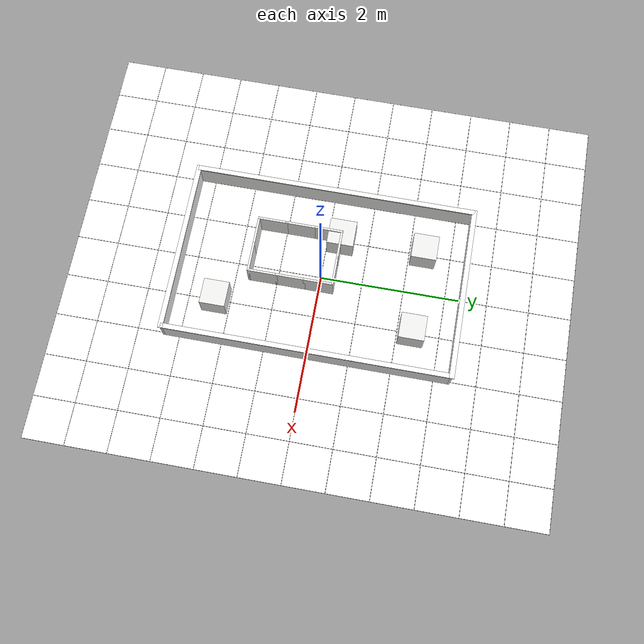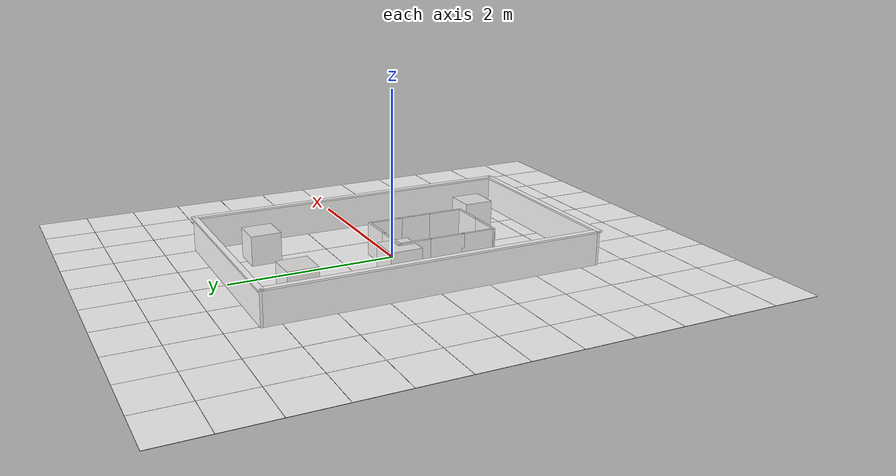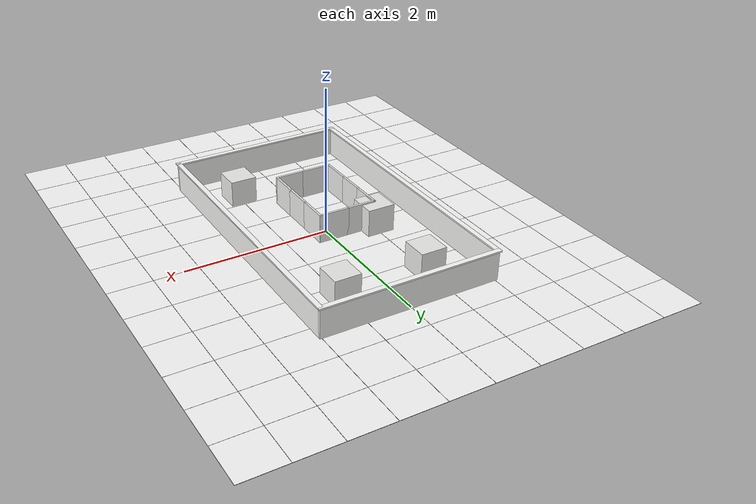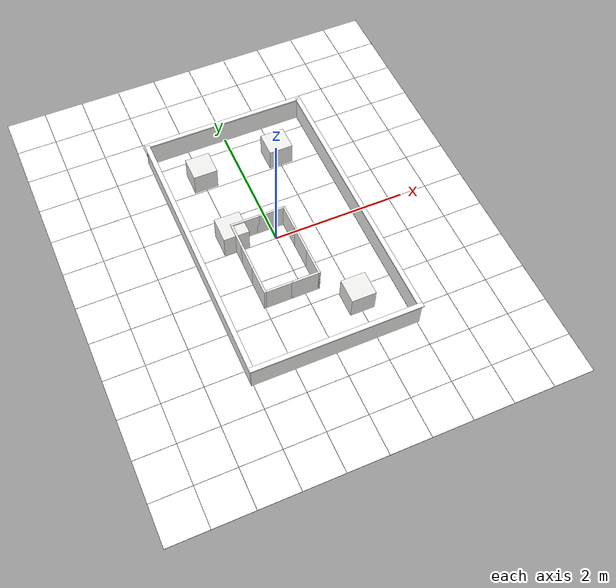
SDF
<?xml version="1.0" ?>
<!-- Generated by generate_grid_world.py from maps/udc_fig3.txt -->
<sdf version="1.9">
  <world name="default">
    <plugin filename="gz-sim-physics-system" name="gz::sim::systems::Physics"/>
    <plugin filename="gz-sim-user-commands-system" name="gz::sim::systems::UserCommands"/>
    <plugin filename="gz-sim-scene-broadcaster-system" name="gz::sim::systems::SceneBroadcaster"/>
    <plugin filename="gz-sim-sensors-system" name="gz::sim::systems::Sensors">
      <render_engine>ogre2</render_engine>
    </plugin>

    <scene>
      <ambient>0.6 0.6 0.6 1</ambient>
      <background>0.8 0.8 0.8 1</background>
      <grid>false</grid>
    </scene>

    <light type="directional" name="sun">
      <cast_shadows>false</cast_shadows>
      <pose>0 0 10 0 0 0</pose>
      <diffuse>0.9 0.9 0.9 1</diffuse>
      <specular>0.2 0.2 0.2 1</specular>
      <direction>-0.3 0.2 -1</direction>
    </light>

    <light type="directional" name="fill">
      <cast_shadows>false</cast_shadows>
      <pose>0 0 10 0 0 0</pose>
      <diffuse>0.45 0.45 0.45 1</diffuse>
      <specular>0 0 0 1</specular>
      <direction>0.6 -0.7 -0.5</direction>
    </light>

    <model name="grid_floor"><static>true</static><link name="link"><visual name="floor_0_0_visual"><pose>-2.7000 -3.3000 0.0010 0 0 0</pose><geometry><box><size>0.5970 0.5970 0.0020</size></box></geometry><material><ambient>1 1 1 1</ambient><diffuse>1 1 1 1</diffuse><pbr><metal><albedo_map>model://grid_world_assets/materials/textures/terrazzo.png</albedo_map><roughness>0.85</roughness><metalness>0</metalness></metal></pbr></material></visual><visual name="floor_0_1_visual"><pose>-2.7000 -2.7000 0.0010 0 0 0</pose><geometry><box><size>0.5970 0.5970 0.0020</size></box></geometry><material><ambient>1 1 1 1</ambient><diffuse>1 1 1 1</diffuse><pbr><metal><albedo_map>model://grid_world_assets/materials/textures/terrazzo.png</albedo_map><roughness>0.85</roughness><metalness>0</metalness></metal></pbr></material></visual><visual name="floor_0_2_visual"><pose>-2.7000 -2.1000 0.0010 0 0 0</pose><geometry><box><size>0.5970 0.5970 0.0020</size></box></geometry><material><ambient>1 1 1 1</ambient><diffuse>1 1 1 1</diffuse><pbr><metal><albedo_map>model://grid_world_assets/materials/textures/terrazzo.png</albedo_map><roughness>0.85</roughness><metalness>0</metalness></metal></pbr></material></visual><visual name="floor_0_3_visual"><pose>-2.7000 -1.5000 0.0010 0 0 0</pose><geometry><box><size>0.5970 0.5970 0.0020</size></box></geometry><material><ambient>1 1 1 1</ambient><diffuse>1 1 1 1</diffuse><pbr><metal><albedo_map>model://grid_world_assets/materials/textures/terrazzo.png</albedo_map><roughness>0.85</roughness><metalness>0</metalness></metal></pbr></material></visual><visual name="floor_0_4_visual"><pose>-2.7000 -0.9000 0.0010 0 0 0</pose><geometry><box><size>0.5970 0.5970 0.0020</size></box></geometry><material><ambient>1 1 1 1</ambient><diffuse>1 1 1 1</diffuse><pbr><metal><albedo_map>model://grid_world_assets/materials/textures/terrazzo.png</albedo_map><roughness>0.85</roughness><metalness>0</metalness></metal></pbr></material></visual><visual name="floor_0_5_visual"><pose>-2.7000 -0.3000 0.0010 0 0 0</pose><geometry><box><size>0.5970 0.5970 0.0020</size></box></geometry><material><ambient>1 1 1 1</ambient><diffuse>1 1 1 1</diffuse><pbr><metal><albedo_map>model://grid_world_assets/materials/textures/terrazzo.png</albedo_map><roughness>0.85</roughness><metalness>0</metalness></metal></pbr></material></visual><visual name="floor_0_6_visual"><pose>-2.7000 0.3000 0.0010 0 0 0</pose><geometry><box><size>0.5970 0.5970 0.0020</size></box></geometry><material><ambient>1 1 1 1</ambient><diffuse>1 1 1 1</diffuse><pbr><metal><albedo_map>model://grid_world_assets/materials/textures/terrazzo.png</albedo_map><roughness>0.85</roughness><metalness>0</metalness></metal></pbr></material></visual><visual name="floor_0_7_visual"><pose>-2.7000 0.9000 0.0010 0 0 0</pose><geometry><box><size>0.5970 0.5970 0.0020</size></box></geometry><material><ambient>1 1 1 1</ambient><diffuse>1 1 1 1</diffuse><pbr><metal><albedo_map>model://grid_world_assets/materials/textures/terrazzo.png</albedo_map><roughness>0.85</roughness><metalness>0</metalness></metal></pbr></material></visual><visual name="floor_0_8_visual"><pose>-2.7000 1.5000 0.0010 0 0 0</pose><geometry><box><size>0.5970 0.5970 0.0020</size></box></geometry><material><ambient>1 1 1 1</ambient><diffuse>1 1 1 1</diffuse><pbr><metal><albedo_map>model://grid_world_assets/materials/textures/terrazzo.png</albedo_map><roughness>0.85</roughness><metalness>0</metalness></metal></pbr></material></visual><visual name="floor_0_9_visual"><pose>-2.7000 2.1000 0.0010 0 0 0</pose><geometry><box><size>0.5970 0.5970 0.0020</size></box></geometry><material><ambient>1 1 1 1</ambient><diffuse>1 1 1 1</diffuse><pbr><metal><albedo_map>model://grid_world_assets/materials/textures/terrazzo.png</albedo_map><roughness>0.85</roughness><metalness>0</metalness></metal></pbr></material></visual><visual name="floor_0_10_visual"><pose>-2.7000 2.7000 0.0010 0 0 0</pose><geometry><box><size>0.5970 0.5970 0.0020</size></box></geometry><material><ambient>1 1 1 1</ambient><diffuse>1 1 1 1</diffuse><pbr><metal><albedo_map>model://grid_world_assets/materials/textures/terrazzo.png</albedo_map><roughness>0.85</roughness><metalness>0</metalness></metal></pbr></material></visual><visual name="floor_0_11_visual"><pose>-2.7000 3.3000 0.0010 0 0 0</pose><geometry><box><size>0.5970 0.5970 0.0020</size></box></geometry><material><ambient>1 1 1 1</ambient><diffuse>1 1 1 1</diffuse><pbr><metal><albedo_map>model://grid_world_assets/materials/textures/terrazzo.png</albedo_map><roughness>0.85</roughness><metalness>0</metalness></metal></pbr></material></visual><visual name="floor_1_0_visual"><pose>-2.1000 -3.3000 0.0010 0 0 0</pose><geometry><box><size>0.5970 0.5970 0.0020</size></box></geometry><material><ambient>1 1 1 1</ambient><diffuse>1 1 1 1</diffuse><pbr><metal><albedo_map>model://grid_world_assets/materials/textures/terrazzo.png</albedo_map><roughness>0.85</roughness><metalness>0</metalness></metal></pbr></material></visual><visual name="floor_1_1_visual"><pose>-2.1000 -2.7000 0.0010 0 0 0</pose><geometry><box><size>0.5970 0.5970 0.0020</size></box></geometry><material><ambient>1 1 1 1</ambient><diffuse>1 1 1 1</diffuse><pbr><metal><albedo_map>model://grid_world_assets/materials/textures/terrazzo.png</albedo_map><roughness>0.85</roughness><metalness>0</metalness></metal></pbr></material></visual><visual name="floor_1_2_visual"><pose>-2.1000 -2.1000 0.0010 0 0 0</pose><geometry><box><size>0.5970 0.5970 0.0020</size></box></geometry><material><ambient>1 1 1 1</ambient><diffuse>1 1 1 1</diffuse><pbr><metal><albedo_map>model://grid_world_assets/materials/textures/terrazzo.png</albedo_map><roughness>0.85</roughness><metalness>0</metalness></metal></pbr></material></visual><visual name="floor_1_3_visual"><pose>-2.1000 -1.5000 0.0010 0 0 0</pose><geometry><box><size>0.5970 0.5970 0.0020</size></box></geometry><material><ambient>1 1 1 1</ambient><diffuse>1 1 1 1</diffuse><pbr><metal><albedo_map>model://grid_world_assets/materials/textures/terrazzo.png</albedo_map><roughness>0.85</roughness><metalness>0</metalness></metal></pbr></material></visual><visual name="floor_1_4_visual"><pose>-2.1000 -0.9000 0.0010 0 0 0</pose><geometry><box><size>0.5970 0.5970 0.0020</size></box></geometry><material><ambient>1 1 1 1</ambient><diffuse>1 1 1 1</diffuse><pbr><metal><albedo_map>model://grid_world_assets/materials/textures/terrazzo.png</albedo_map><roughness>0.85</roughness><metalness>0</metalness></metal></pbr></material></visual><visual name="floor_1_5_visual"><pose>-2.1000 -0.3000 0.0010 0 0 0</pose><geometry><box><size>0.5970 0.5970 0.0020</size></box></geometry><material><ambient>1 1 1 1</ambient><diffuse>1 1 1 1</diffuse><pbr><metal><albedo_map>model://grid_world_assets/materials/textures/terrazzo.png</albedo_map><roughness>0.85</roughness><metalness>0</metalness></metal></pbr></material></visual><visual name="floor_1_6_visual"><pose>-2.1000 0.3000 0.0010 0 0 0</pose><geometry><box><size>0.5970 0.5970 0.0020</size></box></geometry><material><ambient>1 1 1 1</ambient><diffuse>1 1 1 1</diffuse><pbr><metal><albedo_map>model://grid_world_assets/materials/textures/terrazzo.png</albedo_map><roughness>0.85</roughness><metalness>0</metalness></metal></pbr></material></visual><visual name="floor_1_7_visual"><pose>-2.1000 0.9000 0.0010 0 0 0</pose><geometry><box><size>0.5970 0.5970 0.0020</size></box></geometry><material><ambient>1 1 1 1</ambient><diffuse>1 1 1 1</diffuse><pbr><metal><albedo_map>model://grid_world_assets/materials/textures/terrazzo.png</albedo_map><roughness>0.85</roughness><metalness>0</metalness></metal></pbr></material></visual><visual name="floor_1_8_visual"><pose>-2.1000 1.5000 0.0010 0 0 0</pose><geometry><box><size>0.5970 0.5970 0.0020</size></box></geometry><material><ambient>1 1 1 1</ambient><diffuse>1 1 1 1</diffuse><pbr><metal><albedo_map>model://grid_world_assets/materials/textures/terrazzo.png</albedo_map><roughness>0.85</roughness><metalness>0</metalness></metal></pbr></material></visual><visual name="floor_1_9_visual"><pose>-2.1000 2.1000 0.0010 0 0 0</pose><geometry><box><size>0.5970 0.5970 0.0020</size></box></geometry><material><ambient>1 1 1 1</ambient><diffuse>1 1 1 1</diffuse><pbr><metal><albedo_map>model://grid_world_assets/materials/textures/terrazzo.png</albedo_map><roughness>0.85</roughness><metalness>0</metalness></metal></pbr></material></visual><visual name="floor_1_10_visual"><pose>-2.1000 2.7000 0.0010 0 0 0</pose><geometry><box><size>0.5970 0.5970 0.0020</size></box></geometry><material><ambient>1 1 1 1</ambient><diffuse>1 1 1 1</diffuse><pbr><metal><albedo_map>model://grid_world_assets/materials/textures/terrazzo.png</albedo_map><roughness>0.85</roughness><metalness>0</metalness></metal></pbr></material></visual><visual name="floor_1_11_visual"><pose>-2.1000 3.3000 0.0010 0 0 0</pose><geometry><box><size>0.5970 0.5970 0.0020</size></box></geometry><material><ambient>1 1 1 1</ambient><diffuse>1 1 1 1</diffuse><pbr><metal><albedo_map>model://grid_world_assets/materials/textures/terrazzo.png</albedo_map><roughness>0.85</roughness><metalness>0</metalness></metal></pbr></material></visual><visual name="floor_2_0_visual"><pose>-1.5000 -3.3000 0.0010 0 0 0</pose><geometry><box><size>0.5970 0.5970 0.0020</size></box></geometry><material><ambient>1 1 1 1</ambient><diffuse>1 1 1 1</diffuse><pbr><metal><albedo_map>model://grid_world_assets/materials/textures/terrazzo.png</albedo_map><roughness>0.85</roughness><metalness>0</metalness></metal></pbr></material></visual><visual name="floor_2_1_visual"><pose>-1.5000 -2.7000 0.0010 0 0 0</pose><geometry><box><size>0.5970 0.5970 0.0020</size></box></geometry><material><ambient>1 1 1 1</ambient><diffuse>1 1 1 1</diffuse><pbr><metal><albedo_map>model://grid_world_assets/materials/textures/terrazzo.png</albedo_map><roughness>0.85</roughness><metalness>0</metalness></metal></pbr></material></visual><visual name="floor_2_2_visual"><pose>-1.5000 -2.1000 0.0010 0 0 0</pose><geometry><box><size>0.5970 0.5970 0.0020</size></box></geometry><material><ambient>1 1 1 1</ambient><diffuse>1 1 1 1</diffuse><pbr><metal><albedo_map>model://grid_world_assets/materials/textures/terrazzo.png</albedo_map><roughness>0.85</roughness><metalness>0</metalness></metal></pbr></material></visual><visual name="floor_2_3_visual"><pose>-1.5000 -1.5000 0.0010 0 0 0</pose><geometry><box><size>0.5970 0.5970 0.0020</size></box></geometry><material><ambient>1 1 1 1</ambient><diffuse>1 1 1 1</diffuse><pbr><metal><albedo_map>model://grid_world_assets/materials/textures/terrazzo.png</albedo_map><roughness>0.85</roughness><metalness>0</metalness></metal></pbr></material></visual><visual name="floor_2_4_visual"><pose>-1.5000 -0.9000 0.0010 0 0 0</pose><geometry><box><size>0.5970 0.5970 0.0020</size></box></geometry><material><ambient>1 1 1 1</ambient><diffuse>1 1 1 1</diffuse><pbr><metal><albedo_map>model://grid_world_assets/materials/textures/terrazzo.png</albedo_map><roughness>0.85</roughness><metalness>0</metalness></metal></pbr></material></visual><visual name="floor_2_5_visual"><pose>-1.5000 -0.3000 0.0010 0 0 0</pose><geometry><box><size>0.5970 0.5970 0.0020</size></box></geometry><material><ambient>1 1 1 1</ambient><diffuse>1 1 1 1</diffuse><pbr><metal><albedo_map>model://grid_world_assets/materials/textures/terrazzo.png</albedo_map><roughness>0.85</roughness><metalness>0</metalness></metal></pbr></material></visual><visual name="floor_2_6_visual"><pose>-1.5000 0.3000 0.0010 0 0 0</pose><geometry><box><size>0.5970 0.5970 0.0020</size></box></geometry><material><ambient>1 1 1 1</ambient><diffuse>1 1 1 1</diffuse><pbr><metal><albedo_map>model://grid_world_assets/materials/textures/terrazzo.png</albedo_map><roughness>0.85</roughness><metalness>0</metalness></metal></pbr></material></visual><visual name="floor_2_7_visual"><pose>-1.5000 0.9000 0.0010 0 0 0</pose><geometry><box><size>0.5970 0.5970 0.0020</size></box></geometry><material><ambient>1 1 1 1</ambient><diffuse>1 1 1 1</diffuse><pbr><metal><albedo_map>model://grid_world_assets/materials/textures/terrazzo.png</albedo_map><roughness>0.85</roughness><metalness>0</metalness></metal></pbr></material></visual><visual name="floor_2_8_visual"><pose>-1.5000 1.5000 0.0010 0 0 0</pose><geometry><box><size>0.5970 0.5970 0.0020</size></box></geometry><material><ambient>1 1 1 1</ambient><diffuse>1 1 1 1</diffuse><pbr><metal><albedo_map>model://grid_world_assets/materials/textures/terrazzo.png</albedo_map><roughness>0.85</roughness><metalness>0</metalness></metal></pbr></material></visual><visual name="floor_2_9_visual"><pose>-1.5000 2.1000 0.0010 0 0 0</pose><geometry><box><size>0.5970 0.5970 0.0020</size></box></geometry><material><ambient>1 1 1 1</ambient><diffuse>1 1 1 1</diffuse><pbr><metal><albedo_map>model://grid_world_assets/materials/textures/terrazzo.png</albedo_map><roughness>0.85</roughness><metalness>0</metalness></metal></pbr></material></visual><visual name="floor_2_10_visual"><pose>-1.5000 2.7000 0.0010 0 0 0</pose><geometry><box><size>0.5970 0.5970 0.0020</size></box></geometry><material><ambient>1 1 1 1</ambient><diffuse>1 1 1 1</diffuse><pbr><metal><albedo_map>model://grid_world_assets/materials/textures/terrazzo.png</albedo_map><roughness>0.85</roughness><metalness>0</metalness></metal></pbr></material></visual><visual name="floor_2_11_visual"><pose>-1.5000 3.3000 0.0010 0 0 0</pose><geometry><box><size>0.5970 0.5970 0.0020</size></box></geometry><material><ambient>1 1 1 1</ambient><diffuse>1 1 1 1</diffuse><pbr><metal><albedo_map>model://grid_world_assets/materials/textures/terrazzo.png</albedo_map><roughness>0.85</roughness><metalness>0</metalness></metal></pbr></material></visual><visual name="floor_3_0_visual"><pose>-0.9000 -3.3000 0.0010 0 0 0</pose><geometry><box><size>0.5970 0.5970 0.0020</size></box></geometry><material><ambient>1 1 1 1</ambient><diffuse>1 1 1 1</diffuse><pbr><metal><albedo_map>model://grid_world_assets/materials/textures/terrazzo.png</albedo_map><roughness>0.85</roughness><metalness>0</metalness></metal></pbr></material></visual><visual name="floor_3_1_visual"><pose>-0.9000 -2.7000 0.0010 0 0 0</pose><geometry><box><size>0.5970 0.5970 0.0020</size></box></geometry><material><ambient>1 1 1 1</ambient><diffuse>1 1 1 1</diffuse><pbr><metal><albedo_map>model://grid_world_assets/materials/textures/terrazzo.png</albedo_map><roughness>0.85</roughness><metalness>0</metalness></metal></pbr></material></visual><visual name="floor_3_2_visual"><pose>-0.9000 -2.1000 0.0010 0 0 0</pose><geometry><box><size>0.5970 0.5970 0.0020</size></box></geometry><material><ambient>1 1 1 1</ambient><diffuse>1 1 1 1</diffuse><pbr><metal><albedo_map>model://grid_world_assets/materials/textures/terrazzo.png</albedo_map><roughness>0.85</roughness><metalness>0</metalness></metal></pbr></material></visual><visual name="floor_3_3_visual"><pose>-0.9000 -1.5000 0.0010 0 0 0</pose><geometry><box><size>0.5970 0.5970 0.0020</size></box></geometry><material><ambient>1 1 1 1</ambient><diffuse>1 1 1 1</diffuse><pbr><metal><albedo_map>model://grid_world_assets/materials/textures/terrazzo.png</albedo_map><roughness>0.85</roughness><metalness>0</metalness></metal></pbr></material></visual><visual name="floor_3_4_visual"><pose>-0.9000 -0.9000 0.0010 0 0 0</pose><geometry><box><size>0.5970 0.5970 0.0020</size></box></geometry><material><ambient>1 1 1 1</ambient><diffuse>1 1 1 1</diffuse><pbr><metal><albedo_map>model://grid_world_assets/materials/textures/terrazzo.png</albedo_map><roughness>0.85</roughness><metalness>0</metalness></metal></pbr></material></visual><visual name="floor_3_5_visual"><pose>-0.9000 -0.3000 0.0010 0 0 0</pose><geometry><box><size>0.5970 0.5970 0.0020</size></box></geometry><material><ambient>1 1 1 1</ambient><diffuse>1 1 1 1</diffuse><pbr><metal><albedo_map>model://grid_world_assets/materials/textures/terrazzo.png</albedo_map><roughness>0.85</roughness><metalness>0</metalness></metal></pbr></material></visual><visual name="floor_3_6_visual"><pose>-0.9000 0.3000 0.0010 0 0 0</pose><geometry><box><size>0.5970 0.5970 0.0020</size></box></geometry><material><ambient>1 1 1 1</ambient><diffuse>1 1 1 1</diffuse><pbr><metal><albedo_map>model://grid_world_assets/materials/textures/terrazzo.png</albedo_map><roughness>0.85</roughness><metalness>0</metalness></metal></pbr></material></visual><visual name="floor_3_7_visual"><pose>-0.9000 0.9000 0.0010 0 0 0</pose><geometry><box><size>0.5970 0.5970 0.0020</size></box></geometry><material><ambient>1 1 1 1</ambient><diffuse>1 1 1 1</diffuse><pbr><metal><albedo_map>model://grid_world_assets/materials/textures/terrazzo.png</albedo_map><roughness>0.85</roughness><metalness>0</metalness></metal></pbr></material></visual><visual name="floor_3_8_visual"><pose>-0.9000 1.5000 0.0010 0 0 0</pose><geometry><box><size>0.5970 0.5970 0.0020</size></box></geometry><material><ambient>1 1 1 1</ambient><diffuse>1 1 1 1</diffuse><pbr><metal><albedo_map>model://grid_world_assets/materials/textures/terrazzo.png</albedo_map><roughness>0.85</roughness><metalness>0</metalness></metal></pbr></material></visual><visual name="floor_3_9_visual"><pose>-0.9000 2.1000 0.0010 0 0 0</pose><geometry><box><size>0.5970 0.5970 0.0020</size></box></geometry><material><ambient>1 1 1 1</ambient><diffuse>1 1 1 1</diffuse><pbr><metal><albedo_map>model://grid_world_assets/materials/textures/terrazzo.png</albedo_map><roughness>0.85</roughness><metalness>0</metalness></metal></pbr></material></visual><visual name="floor_3_10_visual"><pose>-0.9000 2.7000 0.0010 0 0 0</pose><geometry><box><size>0.5970 0.5970 0.0020</size></box></geometry><material><ambient>1 1 1 1</ambient><diffuse>1 1 1 1</diffuse><pbr><metal><albedo_map>model://grid_world_assets/materials/textures/terrazzo.png</albedo_map><roughness>0.85</roughness><metalness>0</metalness></metal></pbr></material></visual><visual name="floor_3_11_visual"><pose>-0.9000 3.3000 0.0010 0 0 0</pose><geometry><box><size>0.5970 0.5970 0.0020</size></box></geometry><material><ambient>1 1 1 1</ambient><diffuse>1 1 1 1</diffuse><pbr><metal><albedo_map>model://grid_world_assets/materials/textures/terrazzo.png</albedo_map><roughness>0.85</roughness><metalness>0</metalness></metal></pbr></material></visual><visual name="floor_4_0_visual"><pose>-0.3000 -3.3000 0.0010 0 0 0</pose><geometry><box><size>0.5970 0.5970 0.0020</size></box></geometry><material><ambient>1 1 1 1</ambient><diffuse>1 1 1 1</diffuse><pbr><metal><albedo_map>model://grid_world_assets/materials/textures/terrazzo.png</albedo_map><roughness>0.85</roughness><metalness>0</metalness></metal></pbr></material></visual><visual name="floor_4_1_visual"><pose>-0.3000 -2.7000 0.0010 0 0 0</pose><geometry><box><size>0.5970 0.5970 0.0020</size></box></geometry><material><ambient>1 1 1 1</ambient><diffuse>1 1 1 1</diffuse><pbr><metal><albedo_map>model://grid_world_assets/materials/textures/terrazzo.png</albedo_map><roughness>0.85</roughness><metalness>0</metalness></metal></pbr></material></visual><visual name="floor_4_2_visual"><pose>-0.3000 -2.1000 0.0010 0 0 0</pose><geometry><box><size>0.5970 0.5970 0.0020</size></box></geometry><material><ambient>1 1 1 1</ambient><diffuse>1 1 1 1</diffuse><pbr><metal><albedo_map>model://grid_world_assets/materials/textures/terrazzo.png</albedo_map><roughness>0.85</roughness><metalness>0</metalness></metal></pbr></material></visual><visual name="floor_4_3_visual"><pose>-0.3000 -1.5000 0.0010 0 0 0</pose><geometry><box><size>0.5970 0.5970 0.0020</size></box></geometry><material><ambient>1 1 1 1</ambient><diffuse>1 1 1 1</diffuse><pbr><metal><albedo_map>model://grid_world_assets/materials/textures/terrazzo.png</albedo_map><roughness>0.85</roughness><metalness>0</metalness></metal></pbr></material></visual><visual name="floor_4_4_visual"><pose>-0.3000 -0.9000 0.0010 0 0 0</pose><geometry><box><size>0.5970 0.5970 0.0020</size></box></geometry><material><ambient>1 1 1 1</ambient><diffuse>1 1 1 1</diffuse><pbr><metal><albedo_map>model://grid_world_assets/materials/textures/terrazzo.png</albedo_map><roughness>0.85</roughness><metalness>0</metalness></metal></pbr></material></visual><visual name="floor_4_5_visual"><pose>-0.3000 -0.3000 0.0010 0 0 0</pose><geometry><box><size>0.5970 0.5970 0.0020</size></box></geometry><material><ambient>1 1 1 1</ambient><diffuse>1 1 1 1</diffuse><pbr><metal><albedo_map>model://grid_world_assets/materials/textures/terrazzo.png</albedo_map><roughness>0.85</roughness><metalness>0</metalness></metal></pbr></material></visual><visual name="floor_4_6_visual"><pose>-0.3000 0.3000 0.0010 0 0 0</pose><geometry><box><size>0.5970 0.5970 0.0020</size></box></geometry><material><ambient>1 1 1 1</ambient><diffuse>1 1 1 1</diffuse><pbr><metal><albedo_map>model://grid_world_assets/materials/textures/terrazzo.png</albedo_map><roughness>0.85</roughness><metalness>0</metalness></metal></pbr></material></visual><visual name="floor_4_7_visual"><pose>-0.3000 0.9000 0.0010 0 0 0</pose><geometry><box><size>0.5970 0.5970 0.0020</size></box></geometry><material><ambient>1 1 1 1</ambient><diffuse>1 1 1 1</diffuse><pbr><metal><albedo_map>model://grid_world_assets/materials/textures/terrazzo.png</albedo_map><roughness>0.85</roughness><metalness>0</metalness></metal></pbr></material></visual><visual name="floor_4_8_visual"><pose>-0.3000 1.5000 0.0010 0 0 0</pose><geometry><box><size>0.5970 0.5970 0.0020</size></box></geometry><material><ambient>1 1 1 1</ambient><diffuse>1 1 1 1</diffuse><pbr><metal><albedo_map>model://grid_world_assets/materials/textures/terrazzo.png</albedo_map><roughness>0.85</roughness><metalness>0</metalness></metal></pbr></material></visual><visual name="floor_4_9_visual"><pose>-0.3000 2.1000 0.0010 0 0 0</pose><geometry><box><size>0.5970 0.5970 0.0020</size></box></geometry><material><ambient>1 1 1 1</ambient><diffuse>1 1 1 1</diffuse><pbr><metal><albedo_map>model://grid_world_assets/materials/textures/terrazzo.png</albedo_map><roughness>0.85</roughness><metalness>0</metalness></metal></pbr></material></visual><visual name="floor_4_10_visual"><pose>-0.3000 2.7000 0.0010 0 0 0</pose><geometry><box><size>0.5970 0.5970 0.0020</size></box></geometry><material><ambient>1 1 1 1</ambient><diffuse>1 1 1 1</diffuse><pbr><metal><albedo_map>model://grid_world_assets/materials/textures/terrazzo.png</albedo_map><roughness>0.85</roughness><metalness>0</metalness></metal></pbr></material></visual><visual name="floor_4_11_visual"><pose>-0.3000 3.3000 0.0010 0 0 0</pose><geometry><box><size>0.5970 0.5970 0.0020</size></box></geometry><material><ambient>1 1 1 1</ambient><diffuse>1 1 1 1</diffuse><pbr><metal><albedo_map>model://grid_world_assets/materials/textures/terrazzo.png</albedo_map><roughness>0.85</roughness><metalness>0</metalness></metal></pbr></material></visual><visual name="floor_5_0_visual"><pose>0.3000 -3.3000 0.0010 0 0 0</pose><geometry><box><size>0.5970 0.5970 0.0020</size></box></geometry><material><ambient>1 1 1 1</ambient><diffuse>1 1 1 1</diffuse><pbr><metal><albedo_map>model://grid_world_assets/materials/textures/terrazzo.png</albedo_map><roughness>0.85</roughness><metalness>0</metalness></metal></pbr></material></visual><visual name="floor_5_1_visual"><pose>0.3000 -2.7000 0.0010 0 0 0</pose><geometry><box><size>0.5970 0.5970 0.0020</size></box></geometry><material><ambient>1 1 1 1</ambient><diffuse>1 1 1 1</diffuse><pbr><metal><albedo_map>model://grid_world_assets/materials/textures/terrazzo.png</albedo_map><roughness>0.85</roughness><metalness>0</metalness></metal></pbr></material></visual><visual name="floor_5_2_visual"><pose>0.3000 -2.1000 0.0010 0 0 0</pose><geometry><box><size>0.5970 0.5970 0.0020</size></box></geometry><material><ambient>1 1 1 1</ambient><diffuse>1 1 1 1</diffuse><pbr><metal><albedo_map>model://grid_world_assets/materials/textures/terrazzo.png</albedo_map><roughness>0.85</roughness><metalness>0</metalness></metal></pbr></material></visual><visual name="floor_5_3_visual"><pose>0.3000 -1.5000 0.0010 0 0 0</pose><geometry><box><size>0.5970 0.5970 0.0020</size></box></geometry><material><ambient>1 1 1 1</ambient><diffuse>1 1 1 1</diffuse><pbr><metal><albedo_map>model://grid_world_assets/materials/textures/terrazzo.png</albedo_map><roughness>0.85</roughness><metalness>0</metalness></metal></pbr></material></visual><visual name="floor_5_4_visual"><pose>0.3000 -0.9000 0.0010 0 0 0</pose><geometry><box><size>0.5970 0.5970 0.0020</size></box></geometry><material><ambient>1 1 1 1</ambient><diffuse>1 1 1 1</diffuse><pbr><metal><albedo_map>model://grid_world_assets/materials/textures/terrazzo.png</albedo_map><roughness>0.85</roughness><metalness>0</metalness></metal></pbr></material></visual><visual name="floor_5_5_visual"><pose>0.3000 -0.3000 0.0010 0 0 0</pose><geometry><box><size>0.5970 0.5970 0.0020</size></box></geometry><material><ambient>1 1 1 1</ambient><diffuse>1 1 1 1</diffuse><pbr><metal><albedo_map>model://grid_world_assets/materials/textures/terrazzo.png</albedo_map><roughness>0.85</roughness><metalness>0</metalness></metal></pbr></material></visual><visual name="floor_5_6_visual"><pose>0.3000 0.3000 0.0010 0 0 0</pose><geometry><box><size>0.5970 0.5970 0.0020</size></box></geometry><material><ambient>1 1 1 1</ambient><diffuse>1 1 1 1</diffuse><pbr><metal><albedo_map>model://grid_world_assets/materials/textures/terrazzo.png</albedo_map><roughness>0.85</roughness><metalness>0</metalness></metal></pbr></material></visual><visual name="floor_5_7_visual"><pose>0.3000 0.9000 0.0010 0 0 0</pose><geometry><box><size>0.5970 0.5970 0.0020</size></box></geometry><material><ambient>1 1 1 1</ambient><diffuse>1 1 1 1</diffuse><pbr><metal><albedo_map>model://grid_world_assets/materials/textures/terrazzo.png</albedo_map><roughness>0.85</roughness><metalness>0</metalness></metal></pbr></material></visual><visual name="floor_5_8_visual"><pose>0.3000 1.5000 0.0010 0 0 0</pose><geometry><box><size>0.5970 0.5970 0.0020</size></box></geometry><material><ambient>1 1 1 1</ambient><diffuse>1 1 1 1</diffuse><pbr><metal><albedo_map>model://grid_world_assets/materials/textures/terrazzo.png</albedo_map><roughness>0.85</roughness><metalness>0</metalness></metal></pbr></material></visual><visual name="floor_5_9_visual"><pose>0.3000 2.1000 0.0010 0 0 0</pose><geometry><box><size>0.5970 0.5970 0.0020</size></box></geometry><material><ambient>1 1 1 1</ambient><diffuse>1 1 1 1</diffuse><pbr><metal><albedo_map>model://grid_world_assets/materials/textures/terrazzo.png</albedo_map><roughness>0.85</roughness><metalness>0</metalness></metal></pbr></material></visual><visual name="floor_5_10_visual"><pose>0.3000 2.7000 0.0010 0 0 0</pose><geometry><box><size>0.5970 0.5970 0.0020</size></box></geometry><material><ambient>1 1 1 1</ambient><diffuse>1 1 1 1</diffuse><pbr><metal><albedo_map>model://grid_world_assets/materials/textures/terrazzo.png</albedo_map><roughness>0.85</roughness><metalness>0</metalness></metal></pbr></material></visual><visual name="floor_5_11_visual"><pose>0.3000 3.3000 0.0010 0 0 0</pose><geometry><box><size>0.5970 0.5970 0.0020</size></box></geometry><material><ambient>1 1 1 1</ambient><diffuse>1 1 1 1</diffuse><pbr><metal><albedo_map>model://grid_world_assets/materials/textures/terrazzo.png</albedo_map><roughness>0.85</roughness><metalness>0</metalness></metal></pbr></material></visual><visual name="floor_6_0_visual"><pose>0.9000 -3.3000 0.0010 0 0 0</pose><geometry><box><size>0.5970 0.5970 0.0020</size></box></geometry><material><ambient>1 1 1 1</ambient><diffuse>1 1 1 1</diffuse><pbr><metal><albedo_map>model://grid_world_assets/materials/textures/terrazzo.png</albedo_map><roughness>0.85</roughness><metalness>0</metalness></metal></pbr></material></visual><visual name="floor_6_1_visual"><pose>0.9000 -2.7000 0.0010 0 0 0</pose><geometry><box><size>0.5970 0.5970 0.0020</size></box></geometry><material><ambient>1 1 1 1</ambient><diffuse>1 1 1 1</diffuse><pbr><metal><albedo_map>model://grid_world_assets/materials/textures/terrazzo.png</albedo_map><roughness>0.85</roughness><metalness>0</metalness></metal></pbr></material></visual><visual name="floor_6_2_visual"><pose>0.9000 -2.1000 0.0010 0 0 0</pose><geometry><box><size>0.5970 0.5970 0.0020</size></box></geometry><material><ambient>1 1 1 1</ambient><diffuse>1 1 1 1</diffuse><pbr><metal><albedo_map>model://grid_world_assets/materials/textures/terrazzo.png</albedo_map><roughness>0.85</roughness><metalness>0</metalness></metal></pbr></material></visual><visual name="floor_6_3_visual"><pose>0.9000 -1.5000 0.0010 0 0 0</pose><geometry><box><size>0.5970 0.5970 0.0020</size></box></geometry><material><ambient>1 1 1 1</ambient><diffuse>1 1 1 1</diffuse><pbr><metal><albedo_map>model://grid_world_assets/materials/textures/terrazzo.png</albedo_map><roughness>0.85</roughness><metalness>0</metalness></metal></pbr></material></visual><visual name="floor_6_4_visual"><pose>0.9000 -0.9000 0.0010 0 0 0</pose><geometry><box><size>0.5970 0.5970 0.0020</size></box></geometry><material><ambient>1 1 1 1</ambient><diffuse>1 1 1 1</diffuse><pbr><metal><albedo_map>model://grid_world_assets/materials/textures/terrazzo.png</albedo_map><roughness>0.85</roughness><metalness>0</metalness></metal></pbr></material></visual><visual name="floor_6_5_visual"><pose>0.9000 -0.3000 0.0010 0 0 0</pose><geometry><box><size>0.5970 0.5970 0.0020</size></box></geometry><material><ambient>1 1 1 1</ambient><diffuse>1 1 1 1</diffuse><pbr><metal><albedo_map>model://grid_world_assets/materials/textures/terrazzo.png</albedo_map><roughness>0.85</roughness><metalness>0</metalness></metal></pbr></material></visual><visual name="floor_6_6_visual"><pose>0.9000 0.3000 0.0010 0 0 0</pose><geometry><box><size>0.5970 0.5970 0.0020</size></box></geometry><material><ambient>1 1 1 1</ambient><diffuse>1 1 1 1</diffuse><pbr><metal><albedo_map>model://grid_world_assets/materials/textures/terrazzo.png</albedo_map><roughness>0.85</roughness><metalness>0</metalness></metal></pbr></material></visual><visual name="floor_6_7_visual"><pose>0.9000 0.9000 0.0010 0 0 0</pose><geometry><box><size>0.5970 0.5970 0.0020</size></box></geometry><material><ambient>1 1 1 1</ambient><diffuse>1 1 1 1</diffuse><pbr><metal><albedo_map>model://grid_world_assets/materials/textures/terrazzo.png</albedo_map><roughness>0.85</roughness><metalness>0</metalness></metal></pbr></material></visual><visual name="floor_6_8_visual"><pose>0.9000 1.5000 0.0010 0 0 0</pose><geometry><box><size>0.5970 0.5970 0.0020</size></box></geometry><material><ambient>1 1 1 1</ambient><diffuse>1 1 1 1</diffuse><pbr><metal><albedo_map>model://grid_world_assets/materials/textures/terrazzo.png</albedo_map><roughness>0.85</roughness><metalness>0</metalness></metal></pbr></material></visual><visual name="floor_6_9_visual"><pose>0.9000 2.1000 0.0010 0 0 0</pose><geometry><box><size>0.5970 0.5970 0.0020</size></box></geometry><material><ambient>1 1 1 1</ambient><diffuse>1 1 1 1</diffuse><pbr><metal><albedo_map>model://grid_world_assets/materials/textures/terrazzo.png</albedo_map><roughness>0.85</roughness><metalness>0</metalness></metal></pbr></material></visual><visual name="floor_6_10_visual"><pose>0.9000 2.7000 0.0010 0 0 0</pose><geometry><box><size>0.5970 0.5970 0.0020</size></box></geometry><material><ambient>1 1 1 1</ambient><diffuse>1 1 1 1</diffuse><pbr><metal><albedo_map>model://grid_world_assets/materials/textures/terrazzo.png</albedo_map><roughness>0.85</roughness><metalness>0</metalness></metal></pbr></material></visual><visual name="floor_6_11_visual"><pose>0.9000 3.3000 0.0010 0 0 0</pose><geometry><box><size>0.5970 0.5970 0.0020</size></box></geometry><material><ambient>1 1 1 1</ambient><diffuse>1 1 1 1</diffuse><pbr><metal><albedo_map>model://grid_world_assets/materials/textures/terrazzo.png</albedo_map><roughness>0.85</roughness><metalness>0</metalness></metal></pbr></material></visual><visual name="floor_7_0_visual"><pose>1.5000 -3.3000 0.0010 0 0 0</pose><geometry><box><size>0.5970 0.5970 0.0020</size></box></geometry><material><ambient>1 1 1 1</ambient><diffuse>1 1 1 1</diffuse><pbr><metal><albedo_map>model://grid_world_assets/materials/textures/terrazzo.png</albedo_map><roughness>0.85</roughness><metalness>0</metalness></metal></pbr></material></visual><visual name="floor_7_1_visual"><pose>1.5000 -2.7000 0.0010 0 0 0</pose><geometry><box><size>0.5970 0.5970 0.0020</size></box></geometry><material><ambient>1 1 1 1</ambient><diffuse>1 1 1 1</diffuse><pbr><metal><albedo_map>model://grid_world_assets/materials/textures/terrazzo.png</albedo_map><roughness>0.85</roughness><metalness>0</metalness></metal></pbr></material></visual><visual name="floor_7_2_visual"><pose>1.5000 -2.1000 0.0010 0 0 0</pose><geometry><box><size>0.5970 0.5970 0.0020</size></box></geometry><material><ambient>1 1 1 1</ambient><diffuse>1 1 1 1</diffuse><pbr><metal><albedo_map>model://grid_world_assets/materials/textures/terrazzo.png</albedo_map><roughness>0.85</roughness><metalness>0</metalness></metal></pbr></material></visual><visual name="floor_7_3_visual"><pose>1.5000 -1.5000 0.0010 0 0 0</pose><geometry><box><size>0.5970 0.5970 0.0020</size></box></geometry><material><ambient>1 1 1 1</ambient><diffuse>1 1 1 1</diffuse><pbr><metal><albedo_map>model://grid_world_assets/materials/textures/terrazzo.png</albedo_map><roughness>0.85</roughness><metalness>0</metalness></metal></pbr></material></visual><visual name="floor_7_4_visual"><pose>1.5000 -0.9000 0.0010 0 0 0</pose><geometry><box><size>0.5970 0.5970 0.0020</size></box></geometry><material><ambient>1 1 1 1</ambient><diffuse>1 1 1 1</diffuse><pbr><metal><albedo_map>model://grid_world_assets/materials/textures/terrazzo.png</albedo_map><roughness>0.85</roughness><metalness>0</metalness></metal></pbr></material></visual><visual name="floor_7_5_visual"><pose>1.5000 -0.3000 0.0010 0 0 0</pose><geometry><box><size>0.5970 0.5970 0.0020</size></box></geometry><material><ambient>1 1 1 1</ambient><diffuse>1 1 1 1</diffuse><pbr><metal><albedo_map>model://grid_world_assets/materials/textures/terrazzo.png</albedo_map><roughness>0.85</roughness><metalness>0</metalness></metal></pbr></material></visual><visual name="floor_7_6_visual"><pose>1.5000 0.3000 0.0010 0 0 0</pose><geometry><box><size>0.5970 0.5970 0.0020</size></box></geometry><material><ambient>1 1 1 1</ambient><diffuse>1 1 1 1</diffuse><pbr><metal><albedo_map>model://grid_world_assets/materials/textures/terrazzo.png</albedo_map><roughness>0.85</roughness><metalness>0</metalness></metal></pbr></material></visual><visual name="floor_7_7_visual"><pose>1.5000 0.9000 0.0010 0 0 0</pose><geometry><box><size>0.5970 0.5970 0.0020</size></box></geometry><material><ambient>1 1 1 1</ambient><diffuse>1 1 1 1</diffuse><pbr><metal><albedo_map>model://grid_world_assets/materials/textures/terrazzo.png</albedo_map><roughness>0.85</roughness><metalness>0</metalness></metal></pbr></material></visual><visual name="floor_7_8_visual"><pose>1.5000 1.5000 0.0010 0 0 0</pose><geometry><box><size>0.5970 0.5970 0.0020</size></box></geometry><material><ambient>1 1 1 1</ambient><diffuse>1 1 1 1</diffuse><pbr><metal><albedo_map>model://grid_world_assets/materials/textures/terrazzo.png</albedo_map><roughness>0.85</roughness><metalness>0</metalness></metal></pbr></material></visual><visual name="floor_7_9_visual"><pose>1.5000 2.1000 0.0010 0 0 0</pose><geometry><box><size>0.5970 0.5970 0.0020</size></box></geometry><material><ambient>1 1 1 1</ambient><diffuse>1 1 1 1</diffuse><pbr><metal><albedo_map>model://grid_world_assets/materials/textures/terrazzo.png</albedo_map><roughness>0.85</roughness><metalness>0</metalness></metal></pbr></material></visual><visual name="floor_7_10_visual"><pose>1.5000 2.7000 0.0010 0 0 0</pose><geometry><box><size>0.5970 0.5970 0.0020</size></box></geometry><material><ambient>1 1 1 1</ambient><diffuse>1 1 1 1</diffuse><pbr><metal><albedo_map>model://grid_world_assets/materials/textures/terrazzo.png</albedo_map><roughness>0.85</roughness><metalness>0</metalness></metal></pbr></material></visual><visual name="floor_7_11_visual"><pose>1.5000 3.3000 0.0010 0 0 0</pose><geometry><box><size>0.5970 0.5970 0.0020</size></box></geometry><material><ambient>1 1 1 1</ambient><diffuse>1 1 1 1</diffuse><pbr><metal><albedo_map>model://grid_world_assets/materials/textures/terrazzo.png</albedo_map><roughness>0.85</roughness><metalness>0</metalness></metal></pbr></material></visual><visual name="floor_8_0_visual"><pose>2.1000 -3.3000 0.0010 0 0 0</pose><geometry><box><size>0.5970 0.5970 0.0020</size></box></geometry><material><ambient>1 1 1 1</ambient><diffuse>1 1 1 1</diffuse><pbr><metal><albedo_map>model://grid_world_assets/materials/textures/terrazzo.png</albedo_map><roughness>0.85</roughness><metalness>0</metalness></metal></pbr></material></visual><visual name="floor_8_1_visual"><pose>2.1000 -2.7000 0.0010 0 0 0</pose><geometry><box><size>0.5970 0.5970 0.0020</size></box></geometry><material><ambient>1 1 1 1</ambient><diffuse>1 1 1 1</diffuse><pbr><metal><albedo_map>model://grid_world_assets/materials/textures/terrazzo.png</albedo_map><roughness>0.85</roughness><metalness>0</metalness></metal></pbr></material></visual><visual name="floor_8_2_visual"><pose>2.1000 -2.1000 0.0010 0 0 0</pose><geometry><box><size>0.5970 0.5970 0.0020</size></box></geometry><material><ambient>1 1 1 1</ambient><diffuse>1 1 1 1</diffuse><pbr><metal><albedo_map>model://grid_world_assets/materials/textures/terrazzo.png</albedo_map><roughness>0.85</roughness><metalness>0</metalness></metal></pbr></material></visual><visual name="floor_8_3_visual"><pose>2.1000 -1.5000 0.0010 0 0 0</pose><geometry><box><size>0.5970 0.5970 0.0020</size></box></geometry><material><ambient>1 1 1 1</ambient><diffuse>1 1 1 1</diffuse><pbr><metal><albedo_map>model://grid_world_assets/materials/textures/terrazzo.png</albedo_map><roughness>0.85</roughness><metalness>0</metalness></metal></pbr></material></visual><visual name="floor_8_4_visual"><pose>2.1000 -0.9000 0.0010 0 0 0</pose><geometry><box><size>0.5970 0.5970 0.0020</size></box></geometry><material><ambient>1 1 1 1</ambient><diffuse>1 1 1 1</diffuse><pbr><metal><albedo_map>model://grid_world_assets/materials/textures/terrazzo.png</albedo_map><roughness>0.85</roughness><metalness>0</metalness></metal></pbr></material></visual><visual name="floor_8_5_visual"><pose>2.1000 -0.3000 0.0010 0 0 0</pose><geometry><box><size>0.5970 0.5970 0.0020</size></box></geometry><material><ambient>1 1 1 1</ambient><diffuse>1 1 1 1</diffuse><pbr><metal><albedo_map>model://grid_world_assets/materials/textures/terrazzo.png</albedo_map><roughness>0.85</roughness><metalness>0</metalness></metal></pbr></material></visual><visual name="floor_8_6_visual"><pose>2.1000 0.3000 0.0010 0 0 0</pose><geometry><box><size>0.5970 0.5970 0.0020</size></box></geometry><material><ambient>1 1 1 1</ambient><diffuse>1 1 1 1</diffuse><pbr><metal><albedo_map>model://grid_world_assets/materials/textures/terrazzo.png</albedo_map><roughness>0.85</roughness><metalness>0</metalness></metal></pbr></material></visual><visual name="floor_8_7_visual"><pose>2.1000 0.9000 0.0010 0 0 0</pose><geometry><box><size>0.5970 0.5970 0.0020</size></box></geometry><material><ambient>1 1 1 1</ambient><diffuse>1 1 1 1</diffuse><pbr><metal><albedo_map>model://grid_world_assets/materials/textures/terrazzo.png</albedo_map><roughness>0.85</roughness><metalness>0</metalness></metal></pbr></material></visual><visual name="floor_8_8_visual"><pose>2.1000 1.5000 0.0010 0 0 0</pose><geometry><box><size>0.5970 0.5970 0.0020</size></box></geometry><material><ambient>1 1 1 1</ambient><diffuse>1 1 1 1</diffuse><pbr><metal><albedo_map>model://grid_world_assets/materials/textures/terrazzo.png</albedo_map><roughness>0.85</roughness><metalness>0</metalness></metal></pbr></material></visual><visual name="floor_8_9_visual"><pose>2.1000 2.1000 0.0010 0 0 0</pose><geometry><box><size>0.5970 0.5970 0.0020</size></box></geometry><material><ambient>1 1 1 1</ambient><diffuse>1 1 1 1</diffuse><pbr><metal><albedo_map>model://grid_world_assets/materials/textures/terrazzo.png</albedo_map><roughness>0.85</roughness><metalness>0</metalness></metal></pbr></material></visual><visual name="floor_8_10_visual"><pose>2.1000 2.7000 0.0010 0 0 0</pose><geometry><box><size>0.5970 0.5970 0.0020</size></box></geometry><material><ambient>1 1 1 1</ambient><diffuse>1 1 1 1</diffuse><pbr><metal><albedo_map>model://grid_world_assets/materials/textures/terrazzo.png</albedo_map><roughness>0.85</roughness><metalness>0</metalness></metal></pbr></material></visual><visual name="floor_8_11_visual"><pose>2.1000 3.3000 0.0010 0 0 0</pose><geometry><box><size>0.5970 0.5970 0.0020</size></box></geometry><material><ambient>1 1 1 1</ambient><diffuse>1 1 1 1</diffuse><pbr><metal><albedo_map>model://grid_world_assets/materials/textures/terrazzo.png</albedo_map><roughness>0.85</roughness><metalness>0</metalness></metal></pbr></material></visual><visual name="floor_9_0_visual"><pose>2.7000 -3.3000 0.0010 0 0 0</pose><geometry><box><size>0.5970 0.5970 0.0020</size></box></geometry><material><ambient>1 1 1 1</ambient><diffuse>1 1 1 1</diffuse><pbr><metal><albedo_map>model://grid_world_assets/materials/textures/terrazzo.png</albedo_map><roughness>0.85</roughness><metalness>0</metalness></metal></pbr></material></visual><visual name="floor_9_1_visual"><pose>2.7000 -2.7000 0.0010 0 0 0</pose><geometry><box><size>0.5970 0.5970 0.0020</size></box></geometry><material><ambient>1 1 1 1</ambient><diffuse>1 1 1 1</diffuse><pbr><metal><albedo_map>model://grid_world_assets/materials/textures/terrazzo.png</albedo_map><roughness>0.85</roughness><metalness>0</metalness></metal></pbr></material></visual><visual name="floor_9_2_visual"><pose>2.7000 -2.1000 0.0010 0 0 0</pose><geometry><box><size>0.5970 0.5970 0.0020</size></box></geometry><material><ambient>1 1 1 1</ambient><diffuse>1 1 1 1</diffuse><pbr><metal><albedo_map>model://grid_world_assets/materials/textures/terrazzo.png</albedo_map><roughness>0.85</roughness><metalness>0</metalness></metal></pbr></material></visual><visual name="floor_9_3_visual"><pose>2.7000 -1.5000 0.0010 0 0 0</pose><geometry><box><size>0.5970 0.5970 0.0020</size></box></geometry><material><ambient>1 1 1 1</ambient><diffuse>1 1 1 1</diffuse><pbr><metal><albedo_map>model://grid_world_assets/materials/textures/terrazzo.png</albedo_map><roughness>0.85</roughness><metalness>0</metalness></metal></pbr></material></visual><visual name="floor_9_4_visual"><pose>2.7000 -0.9000 0.0010 0 0 0</pose><geometry><box><size>0.5970 0.5970 0.0020</size></box></geometry><material><ambient>1 1 1 1</ambient><diffuse>1 1 1 1</diffuse><pbr><metal><albedo_map>model://grid_world_assets/materials/textures/terrazzo.png</albedo_map><roughness>0.85</roughness><metalness>0</metalness></metal></pbr></material></visual><visual name="floor_9_5_visual"><pose>2.7000 -0.3000 0.0010 0 0 0</pose><geometry><box><size>0.5970 0.5970 0.0020</size></box></geometry><material><ambient>1 1 1 1</ambient><diffuse>1 1 1 1</diffuse><pbr><metal><albedo_map>model://grid_world_assets/materials/textures/terrazzo.png</albedo_map><roughness>0.85</roughness><metalness>0</metalness></metal></pbr></material></visual><visual name="floor_9_6_visual"><pose>2.7000 0.3000 0.0010 0 0 0</pose><geometry><box><size>0.5970 0.5970 0.0020</size></box></geometry><material><ambient>1 1 1 1</ambient><diffuse>1 1 1 1</diffuse><pbr><metal><albedo_map>model://grid_world_assets/materials/textures/terrazzo.png</albedo_map><roughness>0.85</roughness><metalness>0</metalness></metal></pbr></material></visual><visual name="floor_9_7_visual"><pose>2.7000 0.9000 0.0010 0 0 0</pose><geometry><box><size>0.5970 0.5970 0.0020</size></box></geometry><material><ambient>1 1 1 1</ambient><diffuse>1 1 1 1</diffuse><pbr><metal><albedo_map>model://grid_world_assets/materials/textures/terrazzo.png</albedo_map><roughness>0.85</roughness><metalness>0</metalness></metal></pbr></material></visual><visual name="floor_9_8_visual"><pose>2.7000 1.5000 0.0010 0 0 0</pose><geometry><box><size>0.5970 0.5970 0.0020</size></box></geometry><material><ambient>1 1 1 1</ambient><diffuse>1 1 1 1</diffuse><pbr><metal><albedo_map>model://grid_world_assets/materials/textures/terrazzo.png</albedo_map><roughness>0.85</roughness><metalness>0</metalness></metal></pbr></material></visual><visual name="floor_9_9_visual"><pose>2.7000 2.1000 0.0010 0 0 0</pose><geometry><box><size>0.5970 0.5970 0.0020</size></box></geometry><material><ambient>1 1 1 1</ambient><diffuse>1 1 1 1</diffuse><pbr><metal><albedo_map>model://grid_world_assets/materials/textures/terrazzo.png</albedo_map><roughness>0.85</roughness><metalness>0</metalness></metal></pbr></material></visual><visual name="floor_9_10_visual"><pose>2.7000 2.7000 0.0010 0 0 0</pose><geometry><box><size>0.5970 0.5970 0.0020</size></box></geometry><material><ambient>1 1 1 1</ambient><diffuse>1 1 1 1</diffuse><pbr><metal><albedo_map>model://grid_world_assets/materials/textures/terrazzo.png</albedo_map><roughness>0.85</roughness><metalness>0</metalness></metal></pbr></material></visual><visual name="floor_9_11_visual"><pose>2.7000 3.3000 0.0010 0 0 0</pose><geometry><box><size>0.5970 0.5970 0.0020</size></box></geometry><material><ambient>1 1 1 1</ambient><diffuse>1 1 1 1</diffuse><pbr><metal><albedo_map>model://grid_world_assets/materials/textures/terrazzo.png</albedo_map><roughness>0.85</roughness><metalness>0</metalness></metal></pbr></material></visual><visual name="floor_joints_visual"><pose>0.0000 0.0000 -0.0010 0 0 0</pose><geometry><box><size>6.0000 7.2000 0.0020</size></box></geometry><material><ambient>0.18 0.19 0.19 1</ambient><diffuse>0.18 0.19 0.19 1</diffuse><specular>0.1 0.1 0.1 1</specular></material></visual><collision name="ground"><geometry><plane><normal>0 0 1</normal><size>50 50</size></plane></geometry></collision></link></model>
    <model name="grid_border"><static>true</static><link name="link"><visual name="north_visual"><pose>0.0000 2.0150 0.2000 0 0 0</pose><geometry><box><size>2.4600 0.0300 0.4000</size></box></geometry><material><ambient>0.95 0.95 0.94 1</ambient><diffuse>0.95 0.95 0.94 1</diffuse><specular>0.1 0.1 0.1 1</specular></material></visual><collision name="north_collision"><pose>0.0000 2.0150 0.2000 0 0 0</pose><geometry><box><size>2.4600 0.0300 0.4000</size></box></geometry></collision><visual name="north_cap_visual"><pose>0.0000 2.0150 0.4100 0 0 0</pose><geometry><box><size>2.5000 0.0700 0.0200</size></box></geometry><material><ambient>1 1 1 1</ambient><diffuse>1 1 1 1</diffuse><pbr><metal><albedo_map>model://grid_world_assets/materials/textures/wood_plank.png</albedo_map><roughness>0.85</roughness><metalness>0</metalness></metal></pbr></material></visual><collision name="north_cap_collision"><pose>0.0000 2.0150 0.4100 0 0 0</pose><geometry><box><size>2.5000 0.0700 0.0200</size></box></geometry></collision><visual name="south_visual"><pose>0.0000 -2.0150 0.2000 0 0 0</pose><geometry><box><size>2.4600 0.0300 0.4000</size></box></geometry><material><ambient>0.95 0.95 0.94 1</ambient><diffuse>0.95 0.95 0.94 1</diffuse><specular>0.1 0.1 0.1 1</specular></material></visual><collision name="south_collision"><pose>0.0000 -2.0150 0.2000 0 0 0</pose><geometry><box><size>2.4600 0.0300 0.4000</size></box></geometry></collision><visual name="south_cap_visual"><pose>0.0000 -2.0150 0.4100 0 0 0</pose><geometry><box><size>2.5000 0.0700 0.0200</size></box></geometry><material><ambient>1 1 1 1</ambient><diffuse>1 1 1 1</diffuse><pbr><metal><albedo_map>model://grid_world_assets/materials/textures/wood_plank.png</albedo_map><roughness>0.85</roughness><metalness>0</metalness></metal></pbr></material></visual><collision name="south_cap_collision"><pose>0.0000 -2.0150 0.4100 0 0 0</pose><geometry><box><size>2.5000 0.0700 0.0200</size></box></geometry></collision><visual name="east_visual"><pose>1.2150 0.0000 0.2000 0 0 0</pose><geometry><box><size>0.0300 4.0000 0.4000</size></box></geometry><material><ambient>0.95 0.95 0.94 1</ambient><diffuse>0.95 0.95 0.94 1</diffuse><specular>0.1 0.1 0.1 1</specular></material></visual><collision name="east_collision"><pose>1.2150 0.0000 0.2000 0 0 0</pose><geometry><box><size>0.0300 4.0000 0.4000</size></box></geometry></collision><visual name="east_cap_visual"><pose>1.2150 0.0000 0.4100 0 0 0</pose><geometry><box><size>0.0700 4.0400 0.0200</size></box></geometry><material><ambient>1 1 1 1</ambient><diffuse>1 1 1 1</diffuse><pbr><metal><albedo_map>model://grid_world_assets/materials/textures/wood_plank.png</albedo_map><roughness>0.85</roughness><metalness>0</metalness></metal></pbr></material></visual><collision name="east_cap_collision"><pose>1.2150 0.0000 0.4100 0 0 0</pose><geometry><box><size>0.0700 4.0400 0.0200</size></box></geometry></collision><visual name="west_visual"><pose>-1.2150 0.0000 0.2000 0 0 0</pose><geometry><box><size>0.0300 4.0000 0.4000</size></box></geometry><material><ambient>0.95 0.95 0.94 1</ambient><diffuse>0.95 0.95 0.94 1</diffuse><specular>0.1 0.1 0.1 1</specular></material></visual><collision name="west_collision"><pose>-1.2150 0.0000 0.2000 0 0 0</pose><geometry><box><size>0.0300 4.0000 0.4000</size></box></geometry></collision><visual name="west_cap_visual"><pose>-1.2150 0.0000 0.4100 0 0 0</pose><geometry><box><size>0.0700 4.0400 0.0200</size></box></geometry><material><ambient>1 1 1 1</ambient><diffuse>1 1 1 1</diffuse><pbr><metal><albedo_map>model://grid_world_assets/materials/textures/wood_plank.png</albedo_map><roughness>0.85</roughness><metalness>0</metalness></metal></pbr></material></visual><collision name="west_cap_collision"><pose>-1.2150 0.0000 0.4100 0 0 0</pose><geometry><box><size>0.0700 4.0400 0.0200</size></box></geometry></collision></link></model>
    <model name="box_1_1"><static>true</static><pose>-0.6000 1.4000 0 0 0 0</pose><link name="link"><visual name="box_visual"><pose>0.0000 0.0000 0.1800 0 0 0</pose><geometry><box><size>0.3600 0.3600 0.3600</size></box></geometry><material><ambient>0.93 0.93 0.92 1</ambient><diffuse>0.93 0.93 0.92 1</diffuse><specular>0.1 0.1 0.1 1</specular></material></visual><collision name="box_collision"><pose>0.0000 0.0000 0.1800 0 0 0</pose><geometry><box><size>0.3600 0.3600 0.3600</size></box></geometry></collision></link></model><model name="box_1_4"><static>true</static><pose>0.6000 1.4000 0 0 0 0</pose><link name="link"><visual name="box_visual"><pose>0.0000 0.0000 0.1800 0 0 0</pose><geometry><box><size>0.3600 0.3600 0.3600</size></box></geometry><material><ambient>0.93 0.93 0.92 1</ambient><diffuse>0.93 0.93 0.92 1</diffuse><specular>0.1 0.1 0.1 1</specular></material></visual><collision name="box_collision"><pose>0.0000 0.0000 0.1800 0 0 0</pose><geometry><box><size>0.3600 0.3600 0.3600</size></box></geometry></collision></link></model><model name="block_4_1"><static>true</static><pose>-0.6000 0.2000 0 0 0 0</pose><link name="link"><visual name="block_visual"><pose>0.0000 0.0000 0.1900 0 0 0</pose><geometry><box><size>0.3800 0.3800 0.3800</size></box></geometry><material><ambient>0.93 0.93 0.92 1</ambient><diffuse>0.93 0.93 0.92 1</diffuse><specular>0.1 0.1 0.1 1</specular></material></visual><collision name="block_collision"><pose>0.0000 0.0000 0.1900 0 0 0</pose><geometry><box><size>0.3800 0.3800 0.3800</size></box></geometry></collision></link></model><model name="box_8_4"><static>true</static><pose>0.6000 -1.4000 0 0 0 0</pose><link name="link"><visual name="box_visual"><pose>0.0000 0.0000 0.1800 0 0 0</pose><geometry><box><size>0.3600 0.3600 0.3600</size></box></geometry><material><ambient>0.93 0.93 0.92 1</ambient><diffuse>0.93 0.93 0.92 1</diffuse><specular>0.1 0.1 0.1 1</specular></material></visual><collision name="box_collision"><pose>0.0000 0.0000 0.1800 0 0 0</pose><geometry><box><size>0.3600 0.3600 0.3600</size></box></geometry></collision></link></model>
    <model name="thin_walls"><static>true</static><link name="link"><visual name="wall_4_2_0_1_visual"><pose>0.0000 0.2000 0.2000 0 0 0</pose><geometry><box><size>0.4300 0.0300 0.4000</size></box></geometry><material><ambient>0.93 0.93 0.92 1</ambient><diffuse>0.93 0.93 0.92 1</diffuse><specular>0.1 0.1 0.1 1</specular></material></visual><collision name="wall_4_2_0_1_collision"><pose>0.0000 0.2000 0.2000 0 0 0</pose><geometry><box><size>0.4300 0.0300 0.4000</size></box></geometry></collision><visual name="wall_4_2_0_-1_visual"><pose>-0.4000 0.2000 0.2000 0 0 0</pose><geometry><box><size>0.4300 0.0300 0.4000</size></box></geometry><material><ambient>0.93 0.93 0.92 1</ambient><diffuse>0.93 0.93 0.92 1</diffuse><specular>0.1 0.1 0.1 1</specular></material></visual><collision name="wall_4_2_0_-1_collision"><pose>-0.4000 0.2000 0.2000 0 0 0</pose><geometry><box><size>0.4300 0.0300 0.4000</size></box></geometry></collision><visual name="wall_4_3_1_0_visual"><pose>0.2000 0.0000 0.2000 0 0 0</pose><geometry><box><size>0.0300 0.4300 0.4000</size></box></geometry><material><ambient>0.93 0.93 0.92 1</ambient><diffuse>0.93 0.93 0.92 1</diffuse><specular>0.1 0.1 0.1 1</specular></material></visual><collision name="wall_4_3_1_0_collision"><pose>0.2000 0.0000 0.2000 0 0 0</pose><geometry><box><size>0.0300 0.4300 0.4000</size></box></geometry></collision><visual name="wall_5_1_1_0_visual"><pose>-0.6000 -0.4000 0.2000 0 0 0</pose><geometry><box><size>0.0300 0.4300 0.4000</size></box></geometry><material><ambient>0.93 0.93 0.92 1</ambient><diffuse>0.93 0.93 0.92 1</diffuse><specular>0.1 0.1 0.1 1</specular></material></visual><collision name="wall_5_1_1_0_collision"><pose>-0.6000 -0.4000 0.2000 0 0 0</pose><geometry><box><size>0.0300 0.4300 0.4000</size></box></geometry></collision><visual name="wall_5_1_-1_0_visual"><pose>-0.6000 0.0000 0.2000 0 0 0</pose><geometry><box><size>0.0300 0.4300 0.4000</size></box></geometry><material><ambient>0.93 0.93 0.92 1</ambient><diffuse>0.93 0.93 0.92 1</diffuse><specular>0.1 0.1 0.1 1</specular></material></visual><collision name="wall_5_1_-1_0_collision"><pose>-0.6000 0.0000 0.2000 0 0 0</pose><geometry><box><size>0.0300 0.4300 0.4000</size></box></geometry></collision><visual name="wall_5_3_1_0_visual"><pose>0.2000 -0.4000 0.2000 0 0 0</pose><geometry><box><size>0.0300 0.4300 0.4000</size></box></geometry><material><ambient>0.93 0.93 0.92 1</ambient><diffuse>0.93 0.93 0.92 1</diffuse><specular>0.1 0.1 0.1 1</specular></material></visual><collision name="wall_5_3_1_0_collision"><pose>0.2000 -0.4000 0.2000 0 0 0</pose><geometry><box><size>0.0300 0.4300 0.4000</size></box></geometry></collision><visual name="wall_6_1_1_0_visual"><pose>-0.6000 -0.8000 0.2000 0 0 0</pose><geometry><box><size>0.0300 0.4300 0.4000</size></box></geometry><material><ambient>0.93 0.93 0.92 1</ambient><diffuse>0.93 0.93 0.92 1</diffuse><specular>0.1 0.1 0.1 1</specular></material></visual><collision name="wall_6_1_1_0_collision"><pose>-0.6000 -0.8000 0.2000 0 0 0</pose><geometry><box><size>0.0300 0.4300 0.4000</size></box></geometry></collision><visual name="wall_6_3_1_0_visual"><pose>0.2000 -0.8000 0.2000 0 0 0</pose><geometry><box><size>0.0300 0.4300 0.4000</size></box></geometry><material><ambient>0.93 0.93 0.92 1</ambient><diffuse>0.93 0.93 0.92 1</diffuse><specular>0.1 0.1 0.1 1</specular></material></visual><collision name="wall_6_3_1_0_collision"><pose>0.2000 -0.8000 0.2000 0 0 0</pose><geometry><box><size>0.0300 0.4300 0.4000</size></box></geometry></collision><visual name="wall_7_1_0_1_visual"><pose>-0.4000 -1.0000 0.2000 0 0 0</pose><geometry><box><size>0.4300 0.0300 0.4000</size></box></geometry><material><ambient>0.93 0.93 0.92 1</ambient><diffuse>0.93 0.93 0.92 1</diffuse><specular>0.1 0.1 0.1 1</specular></material></visual><collision name="wall_7_1_0_1_collision"><pose>-0.4000 -1.0000 0.2000 0 0 0</pose><geometry><box><size>0.4300 0.0300 0.4000</size></box></geometry></collision><visual name="wall_7_2_0_1_visual"><pose>0.0000 -1.0000 0.2000 0 0 0</pose><geometry><box><size>0.4300 0.0300 0.4000</size></box></geometry><material><ambient>0.93 0.93 0.92 1</ambient><diffuse>0.93 0.93 0.92 1</diffuse><specular>0.1 0.1 0.1 1</specular></material></visual><collision name="wall_7_2_0_1_collision"><pose>0.0000 -1.0000 0.2000 0 0 0</pose><geometry><box><size>0.4300 0.0300 0.4000</size></box></geometry></collision></link></model>
  </world>
</sdf>
